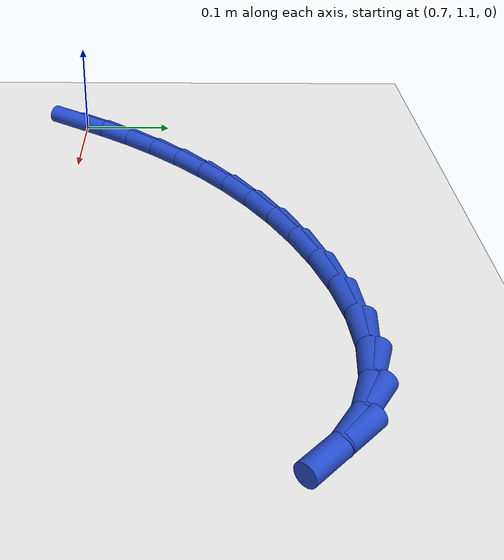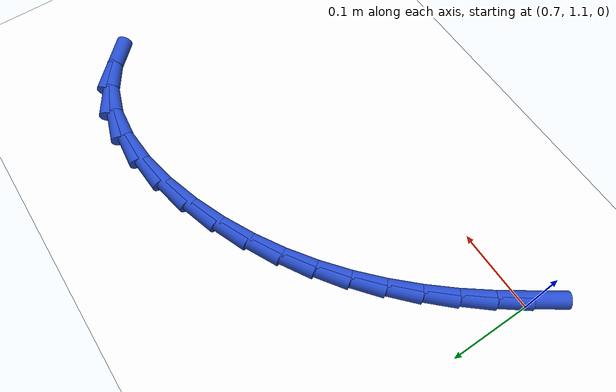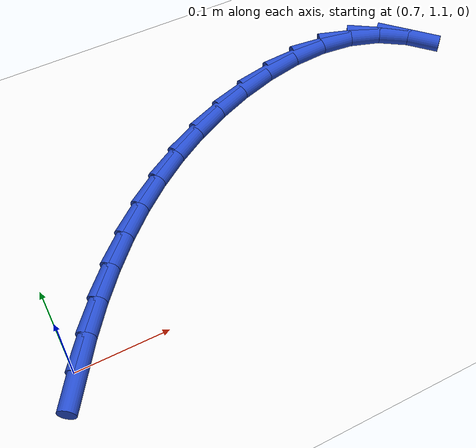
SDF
<sdf version="1.6">
 <world name="default">
  <model name="ground_plane">
   <static>1</static>
   <link name="link">
    <collision name="collision">
     <geometry><plane><normal>0 0 1</normal><size>100 100</size></plane></geometry>
     <surface><friction><ode><mu>100</mu><mu2>50</mu2></ode></friction></surface>
    </collision>
    <visual name="visual">
     <cast_shadows>0</cast_shadows>
     <geometry><plane><normal>0 0 1</normal><size>100 100</size></plane></geometry>
     <material>
      <script><uri>file://media/materials/scripts/gazebo.material</uri><name>Gazebo/WhiteGlow</name></script>
     </material>
    </visual>
   </link>
  </model>
  <model name="line">
   <link name="link_34">
    <pose>0.7021098673235646 1.0922889776427565 0.01 0 1.57 0.9743697836934179</pose>
    <collision name="collision">
     <geometry><cylinder><radius>0.01</radius><length>0.08</length></cylinder></geometry>
    </collision>
    <visual name="visual">
     <material>
      <script><name>Gazebo/Blue</name><uri>file://media/materials/scripts/gazebo.material</uri></script>
     </material>
     <geometry><cylinder><radius>0.01</radius><length>0.08</length></cylinder></geometry>
    </visual>
   </link>
   <link name="link_35">
    <pose>0.7243871114631888 1.1251025382700675 0.01 0 1.57 0.925034121604187</pose>
    <collision name="collision">
     <geometry><cylinder><radius>0.01</radius><length>0.08</length></cylinder></geometry>
    </collision>
    <visual name="visual">
     <material>
      <script><name>Gazebo/Blue</name><uri>file://media/materials/scripts/gazebo.material</uri></script>
     </material>
     <geometry><cylinder><radius>0.01</radius><length>0.08</length></cylinder></geometry>
    </visual>
   </link>
   <link name="link_36">
    <pose>0.7482358899334995 1.1567515695746766 0.01 0 1.57 0.8711605030415978</pose>
    <collision name="collision">
     <geometry><cylinder><radius>0.01</radius><length>0.08</length></cylinder></geometry>
    </collision>
    <visual name="visual">
     <material>
      <script><name>Gazebo/Blue</name><uri>file://media/materials/scripts/gazebo.material</uri></script>
     </material>
     <geometry><cylinder><radius>0.01</radius><length>0.08</length></cylinder></geometry>
    </visual>
   </link>
   <link name="link_37">
    <pose>0.7737395381273396 1.187052956673658 0.01 0 1.57 0.8126848541861744</pose>
    <collision name="collision">
     <geometry><cylinder><radius>0.01</radius><length>0.08</length></cylinder></geometry>
    </collision>
    <visual name="visual">
     <material>
      <script><name>Gazebo/Blue</name><uri>file://media/materials/scripts/gazebo.material</uri></script>
     </material>
     <geometry><cylinder><radius>0.01</radius><length>0.08</length></cylinder></geometry>
    </visual>
   </link>
   <link name="link_38">
    <pose>0.8009813914375513 1.215823584684088 0.01 0 1.57 0.7496572512925318</pose>
    <collision name="collision">
     <geometry><cylinder><radius>0.01</radius><length>0.08</length></cylinder></geometry>
    </collision>
    <visual name="visual">
     <material>
      <script><name>Gazebo/Blue</name><uri>file://media/materials/scripts/gazebo.material</uri></script>
     </material>
     <geometry><cylinder><radius>0.01</radius><length>0.08</length></cylinder></geometry>
    </visual>
   </link>
   <link name="link_39">
    <pose>0.8300447852569769 1.24288033872304 0.01 0 1.57 0.6822785478303901</pose>
    <collision name="collision">
     <geometry><cylinder><radius>0.01</radius><length>0.08</length></cylinder></geometry>
    </collision>
    <visual name="visual">
     <material>
      <script><name>Gazebo/Blue</name><uri>file://media/materials/scripts/gazebo.material</uri></script>
     </material>
     <geometry><cylinder><radius>0.01</radius><length>0.08</length></cylinder></geometry>
    </visual>
   </link>
   <link name="link_40">
    <pose>0.8610130549784595 1.2680401039075897 0.01 0 1.57 0.6109321194084202</pose>
    <collision name="collision">
     <geometry><cylinder><radius>0.01</radius><length>0.08</length></cylinder></geometry>
    </collision>
    <visual name="visual">
     <material>
      <script><name>Gazebo/Blue</name><uri>file://media/materials/scripts/gazebo.material</uri></script>
     </material>
     <geometry><cylinder><radius>0.01</radius><length>0.08</length></cylinder></geometry>
    </visual>
   </link>
   <link name="link_41">
    <pose>0.8939695359948407 1.2911197653548114 0.01 0 1.57 0.5362027180537691</pose>
    <collision name="collision">
     <geometry><cylinder><radius>0.01</radius><length>0.08</length></cylinder></geometry>
    </collision>
    <visual name="visual">
     <material>
      <script><name>Gazebo/Blue</name><uri>file://media/materials/scripts/gazebo.material</uri></script>
     </material>
     <geometry><cylinder><radius>0.01</radius><length>0.08</length></cylinder></geometry>
    </visual>
   </link>
   <link name="link_42">
    <pose>0.9289975636989636 1.3119362081817805 0.01 0 1.57 0.4588739707812287</pose>
    <collision name="collision">
     <geometry><cylinder><radius>0.01</radius><length>0.08</length></cylinder></geometry>
    </collision>
    <visual name="visual">
     <material>
      <script><name>Gazebo/Blue</name><uri>file://media/materials/scripts/gazebo.material</uri></script>
     </material>
     <geometry><cylinder><radius>0.01</radius><length>0.08</length></cylinder></geometry>
    </visual>
   </link>
   <link name="link_43">
    <pose>0.966180473483671 1.3303063175055723 0.01 0 1.57 0.3797169198946685</pose>
    <collision name="collision">
     <geometry><cylinder><radius>0.01</radius><length>0.08</length></cylinder></geometry>
    </collision>
    <visual name="visual">
     <material>
      <script><name>Gazebo/Blue</name><uri>file://media/materials/scripts/gazebo.material</uri></script>
     </material>
     <geometry><cylinder><radius>0.01</radius><length>0.08</length></cylinder></geometry>
    </visual>
   </link>
   <link name="link_44">
    <pose>1.0055745547148298 1.3460278854466672 0.01 0 1.57 0.2940314925303402</pose>
    <collision name="collision">
     <geometry><cylinder><radius>0.01</radius><length>0.08</length></cylinder></geometry>
    </collision>
    <visual name="visual">
     <material>
      <script><name>Gazebo/Blue</name><uri>file://media/materials/scripts/gazebo.material</uri></script>
     </material>
     <geometry><cylinder><radius>0.01</radius><length>0.08</length></cylinder></geometry>
    </visual>
   </link>
   <link name="link_45">
    <pose>1.0466026985848493 1.358451560107704 0.01 0 1.57 0.19125689723136152</pose>
    <collision name="collision">
     <geometry><cylinder><radius>0.01</radius><length>0.08</length></cylinder></geometry>
    </collision>
    <visual name="visual">
     <material>
      <script><name>Gazebo/Blue</name><uri>file://media/materials/scripts/gazebo.material</uri></script>
     </material>
     <geometry><cylinder><radius>0.01</radius><length>0.08</length></cylinder></geometry>
    </visual>
   </link>
   <link name="link_46">
    <pose>1.0880480335678888 1.3664763525574763 0.01 0 1.57 0.06159343413394013</pose>
    <collision name="collision">
     <geometry><cylinder><radius>0.01</radius><length>0.08</length></cylinder></geometry>
    </collision>
    <visual name="visual">
     <material>
      <script><name>Gazebo/Blue</name><uri>file://media/materials/scripts/gazebo.material</uri></script>
     </material>
     <geometry><cylinder><radius>0.01</radius><length>0.08</length></cylinder></geometry>
    </visual>
   </link>
   <link name="link_47">
    <pose>1.1286653691622865 1.3689812822368241 0.01 0 1.57 -0.10689428216040722</pose>
    <collision name="collision">
     <geometry><cylinder><radius>0.01</radius><length>0.08</length></cylinder></geometry>
    </collision>
    <visual name="visual">
     <material>
      <script><name>Gazebo/Blue</name><uri>file://media/materials/scripts/gazebo.material</uri></script>
     </material>
     <geometry><cylinder><radius>0.01</radius><length>0.08</length></cylinder></geometry>
    </visual>
   </link>
   <link name="link_48">
    <pose>1.1672095148663804 1.364845368586588 0.01 0 1.57 -0.32572626954739164</pose>
    <collision name="collision">
     <geometry><cylinder><radius>0.01</radius><length>0.08</length></cylinder></geometry>
    </collision>
    <visual name="visual">
     <material>
      <script><name>Gazebo/Blue</name><uri>file://media/materials/scripts/gazebo.material</uri></script>
     </material>
     <geometry><cylinder><radius>0.01</radius><length>0.08</length></cylinder></geometry>
    </visual>
   </link>
   <link name="link_49">
    <pose>1.2024352801785085 1.3529476310476076 0.01 0 1.57 -0.5806431461620517</pose>
    <collision name="collision">
     <geometry><cylinder><radius>0.01</radius><length>0.08</length></cylinder></geometry>
    </collision>
    <visual name="visual">
     <material>
      <script><name>Gazebo/Blue</name><uri>file://media/materials/scripts/gazebo.material</uri></script>
     </material>
     <geometry><cylinder><radius>0.01</radius><length>0.08</length></cylinder></geometry>
    </visual>
   </link>
   <link name="link_50">
    <pose>1.2334210359245696 1.3326182469742145 0.01 0 1.57 -0.7914961781277791</pose>
    <collision name="collision">
     <geometry><cylinder><radius>0.01</radius><length>0.08</length></cylinder></geometry>
    </collision>
    <visual name="visual">
     <material>
      <script><name>Gazebo/Blue</name><uri>file://media/materials/scripts/gazebo.material</uri></script>
     </material>
     <geometry><cylinder><radius>0.01</radius><length>0.08</length></cylinder></geometry>
    </visual>
   </link>
  </model>
 </world>
</sdf>
